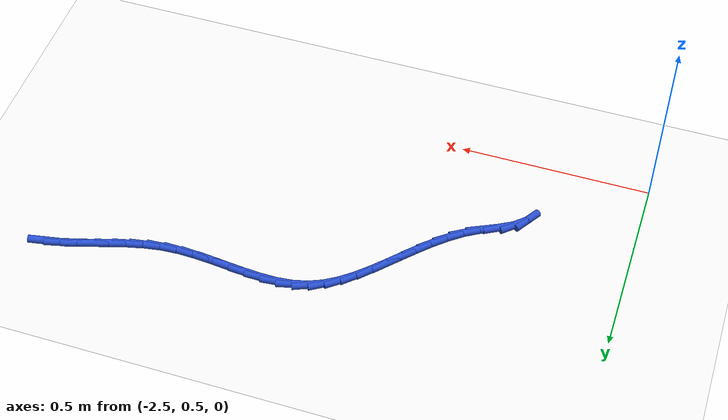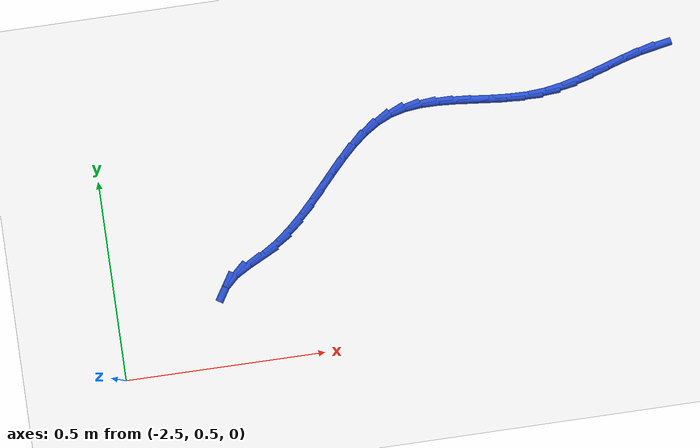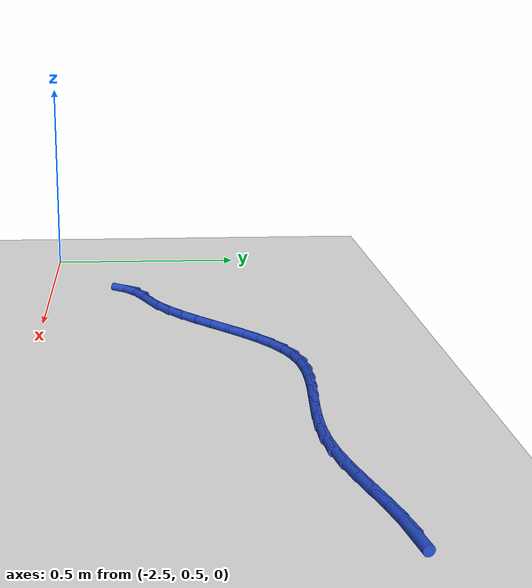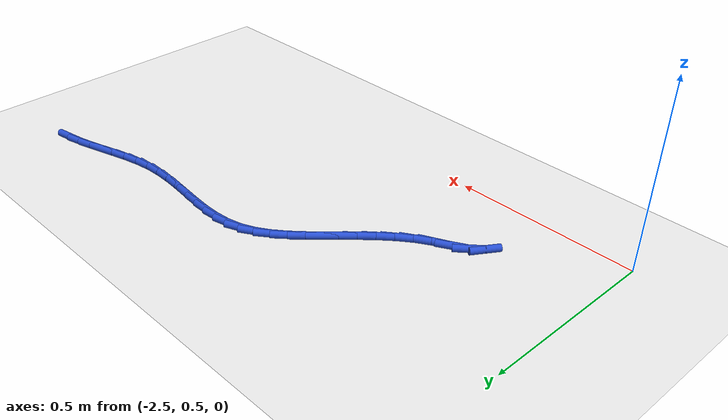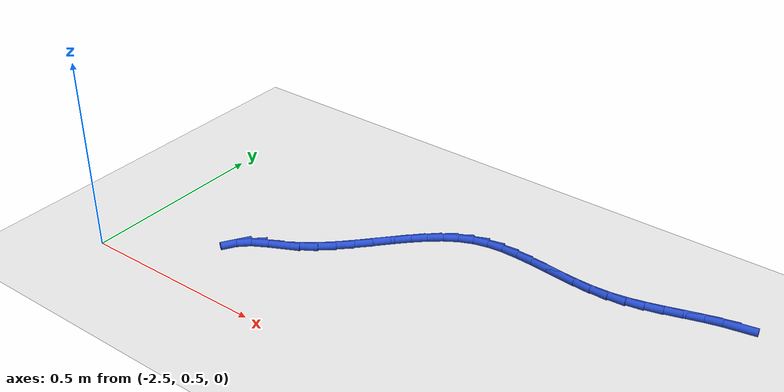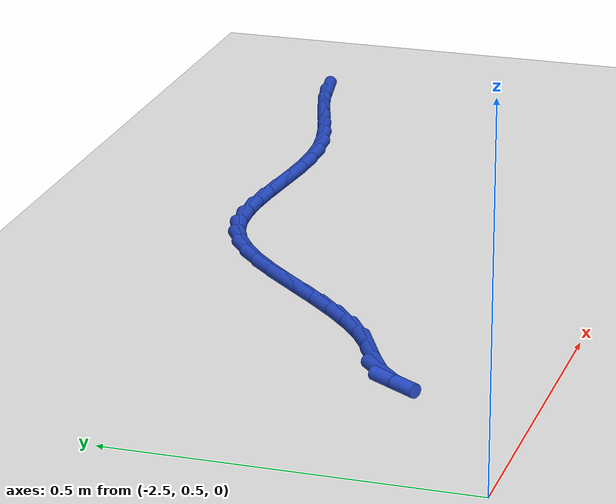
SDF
<sdf version="1.6">
 <world name="default">
  <model name="ground_plane">
   <static>1</static>
   <link name="link">
    <collision name="collision">
     <geometry><plane><normal>0 0 1</normal><size>100 100</size></plane></geometry>
     <surface><friction><ode><mu>100</mu><mu2>50</mu2></ode></friction></surface>
    </collision>
    <visual name="visual">
     <cast_shadows>0</cast_shadows>
     <geometry><plane><normal>0 0 1</normal><size>100 100</size></plane></geometry>
     <material>
      <script><uri>file://media/materials/scripts/gazebo.material</uri><name>Gazebo/WhiteGlow</name></script>
     </material>
    </visual>
   </link>
  </model>
  <model name="line">
   <link name="link_42">
    <pose>-1.074573151165025 1.1385434567204546 0.01 0 1.57 0.18410774424874166</pose>
    <collision name="collision">
     <geometry><cylinder><radius>0.01</radius><length>0.08</length></cylinder></geometry>
    </collision>
    <visual name="visual">
     <material>
      <script><name>Gazebo/Blue</name><uri>file://media/materials/scripts/gazebo.material</uri></script>
     </material>
     <geometry><cylinder><radius>0.01</radius><length>0.08</length></cylinder></geometry>
    </visual>
   </link>
   <link name="link_43">
    <pose>-1.1153569736976783 1.1309488363957154 0.01 0 1.57 0.256298369105912</pose>
    <collision name="collision">
     <geometry><cylinder><radius>0.01</radius><length>0.08</length></cylinder></geometry>
    </collision>
    <visual name="visual">
     <material>
      <script><name>Gazebo/Blue</name><uri>file://media/materials/scripts/gazebo.material</uri></script>
     </material>
     <geometry><cylinder><radius>0.01</radius><length>0.08</length></cylinder></geometry>
    </visual>
   </link>
   <link name="link_44">
    <pose>-1.156262246878765 1.1202291253668561 0.01 0 1.57 0.2961466587748973</pose>
    <collision name="collision">
     <geometry><cylinder><radius>0.01</radius><length>0.08</length></cylinder></geometry>
    </collision>
    <visual name="visual">
     <material>
      <script><name>Gazebo/Blue</name><uri>file://media/materials/scripts/gazebo.material</uri></script>
     </material>
     <geometry><cylinder><radius>0.01</radius><length>0.08</length></cylinder></geometry>
    </visual>
   </link>
   <link name="link_45">
    <pose>-1.1974212930094799 1.1076707104634085 0.01 0 1.57 0.3056865476496799</pose>
    <collision name="collision">
     <geometry><cylinder><radius>0.01</radius><length>0.08</length></cylinder></geometry>
    </collision>
    <visual name="visual">
     <material>
      <script><name>Gazebo/Blue</name><uri>file://media/materials/scripts/gazebo.material</uri></script>
     </material>
     <geometry><cylinder><radius>0.01</radius><length>0.08</length></cylinder></geometry>
    </visual>
   </link>
   <link name="link_46">
    <pose>-1.2389664343910192 1.0945599785149045 0.01 0 1.57 0.2861614366990151</pose>
    <collision name="collision">
     <geometry><cylinder><radius>0.01</radius><length>0.08</length></cylinder></geometry>
    </collision>
    <visual name="visual">
     <material>
      <script><name>Gazebo/Blue</name><uri>file://media/materials/scripts/gazebo.material</uri></script>
     </material>
     <geometry><cylinder><radius>0.01</radius><length>0.08</length></cylinder></geometry>
    </visual>
   </link>
   <link name="link_47">
    <pose>-1.2810299933245772 1.0821833163508756 0.01 0 1.57 0.23786299277136586</pose>
    <collision name="collision">
     <geometry><cylinder><radius>0.01</radius><length>0.08</length></cylinder></geometry>
    </collision>
    <visual name="visual">
     <material>
      <script><name>Gazebo/Blue</name><uri>file://media/materials/scripts/gazebo.material</uri></script>
     </material>
     <geometry><cylinder><radius>0.01</radius><length>0.08</length></cylinder></geometry>
    </visual>
   </link>
   <link name="link_48">
    <pose>-1.32374429211135 1.0718271108008544 0.01 0 1.57 0.16066722216159088</pose>
    <collision name="collision">
     <geometry><cylinder><radius>0.01</radius><length>0.08</length></cylinder></geometry>
    </collision>
    <visual name="visual">
     <material>
      <script><name>Gazebo/Blue</name><uri>file://media/materials/scripts/gazebo.material</uri></script>
     </material>
     <geometry><cylinder><radius>0.01</radius><length>0.08</length></cylinder></geometry>
    </visual>
   </link>
   <link name="link_49">
    <pose>-1.367241653052532 1.0647777486943713 0.01 0 1.57 0.06099022538829343</pose>
    <collision name="collision">
     <geometry><cylinder><radius>0.01</radius><length>0.08</length></cylinder></geometry>
    </collision>
    <visual name="visual">
     <material>
      <script><name>Gazebo/Blue</name><uri>file://media/materials/scripts/gazebo.material</uri></script>
     </material>
     <geometry><cylinder><radius>0.01</radius><length>0.08</length></cylinder></geometry>
    </visual>
   </link>
   <link name="link_50">
    <pose>-1.4116028810396957 1.0620687876296848 0.01 0 1.57 -0.02235480627939234</pose>
    <collision name="collision">
     <geometry><cylinder><radius>0.01</radius><length>0.08</length></cylinder></geometry>
    </collision>
    <visual name="visual">
     <material>
      <script><name>Gazebo/Blue</name><uri>file://media/materials/scripts/gazebo.material</uri></script>
     </material>
     <geometry><cylinder><radius>0.01</radius><length>0.08</length></cylinder></geometry>
    </visual>
   </link>
   <link name="link_51">
    <pose>-1.4565706178410716 1.0630742001610183 0.01 0 1.57 -0.07565118614138357</pose>
    <collision name="collision">
     <geometry><cylinder><radius>0.01</radius><length>0.08</length></cylinder></geometry>
    </collision>
    <visual name="visual">
     <material>
      <script><name>Gazebo/Blue</name><uri>file://media/materials/scripts/gazebo.material</uri></script>
     </material>
     <geometry><cylinder><radius>0.01</radius><length>0.08</length></cylinder></geometry>
    </visual>
   </link>
   <link name="link_52">
    <pose>-1.5017511336101488 1.066498695174736 0.01 0 1.57 -0.10069201604670874</pose>
    <collision name="collision">
     <geometry><cylinder><radius>0.01</radius><length>0.08</length></cylinder></geometry>
    </collision>
    <visual name="visual">
     <material>
      <script><name>Gazebo/Blue</name><uri>file://media/materials/scripts/gazebo.material</uri></script>
     </material>
     <geometry><cylinder><radius>0.01</radius><length>0.08</length></cylinder></geometry>
    </visual>
   </link>
   <link name="link_53">
    <pose>-1.5467503211675309 1.071045129740832 0.01 0 1.57 -0.09808277241048377</pose>
    <collision name="collision">
     <geometry><cylinder><radius>0.01</radius><length>0.08</length></cylinder></geometry>
    </collision>
    <visual name="visual">
     <material>
      <script><name>Gazebo/Blue</name><uri>file://media/materials/scripts/gazebo.material</uri></script>
     </material>
     <geometry><cylinder><radius>0.01</radius><length>0.08</length></cylinder></geometry>
    </visual>
   </link>
   <link name="link_54">
    <pose>-1.5911740733338242 1.0754163609293022 0.01 0 1.57 -0.06661255522651933</pose>
    <collision name="collision">
     <geometry><cylinder><radius>0.01</radius><length>0.08</length></cylinder></geometry>
    </collision>
    <visual name="visual">
     <material>
      <script><name>Gazebo/Blue</name><uri>file://media/materials/scripts/gazebo.material</uri></script>
     </material>
     <geometry><cylinder><radius>0.01</radius><length>0.08</length></cylinder></geometry>
    </visual>
   </link>
   <link name="link_55">
    <pose>-1.6346282829296348 1.0783152458101406 0.01 0 1.57 -0.0030742103703682885</pose>
    <collision name="collision">
     <geometry><cylinder><radius>0.01</radius><length>0.08</length></cylinder></geometry>
    </collision>
    <visual name="visual">
     <material>
      <script><name>Gazebo/Blue</name><uri>file://media/materials/scripts/gazebo.material</uri></script>
     </material>
     <geometry><cylinder><radius>0.01</radius><length>0.08</length></cylinder></geometry>
    </visual>
   </link>
   <link name="link_56">
    <pose>-1.6767188427755668 1.0784446414533433 0.01 0 1.57 0.09731039615867956</pose>
    <collision name="collision">
     <geometry><cylinder><radius>0.01</radius><length>0.08</length></cylinder></geometry>
    </collision>
    <visual name="visual">
     <material>
      <script><name>Gazebo/Blue</name><uri>file://media/materials/scripts/gazebo.material</uri></script>
     </material>
     <geometry><cylinder><radius>0.01</radius><length>0.08</length></cylinder></geometry>
    </visual>
   </link>
   <link name="link_57">
    <pose>-1.7170516456922265 1.074507404928904 0.01 0 1.57 0.23894945844731774</pose>
    <collision name="collision">
     <geometry><cylinder><radius>0.01</radius><length>0.08</length></cylinder></geometry>
    </collision>
    <visual name="visual">
     <material>
      <script><name>Gazebo/Blue</name><uri>file://media/materials/scripts/gazebo.material</uri></script>
     </material>
     <geometry><cylinder><radius>0.01</radius><length>0.08</length></cylinder></geometry>
    </visual>
   </link>
   <link name="link_58">
    <pose>-1.7552325845002201 1.0652063933068188 0.01 0 1.57 0.41126925163174294</pose>
    <collision name="collision">
     <geometry><cylinder><radius>0.01</radius><length>0.08</length></cylinder></geometry>
    </collision>
    <visual name="visual">
     <material>
      <script><name>Gazebo/Blue</name><uri>file://media/materials/scripts/gazebo.material</uri></script>
     </material>
     <geometry><cylinder><radius>0.01</radius><length>0.08</length></cylinder></geometry>
    </visual>
   </link>
   <link name="link_59">
    <pose>-1.7910038839021345 1.0496050609742291 0.01 0 1.57 0.5626519368448563</pose>
    <collision name="collision">
     <geometry><cylinder><radius>0.01</radius><length>0.08</length></cylinder></geometry>
    </collision>
    <visual name="visual">
     <material>
      <script><name>Gazebo/Blue</name><uri>file://media/materials/scripts/gazebo.material</uri></script>
     </material>
     <geometry><cylinder><radius>0.01</radius><length>0.08</length></cylinder></geometry>
    </visual>
   </link>
   <link name="link_60">
    <pose>-1.824706500268398 1.0283505053368704 0.01 0 1.57 0.6769133172809165</pose>
    <collision name="collision">
     <geometry><cylinder><radius>0.01</radius><length>0.08</length></cylinder></geometry>
    </collision>
    <visual name="visual">
     <material>
      <script><name>Gazebo/Blue</name><uri>file://media/materials/scripts/gazebo.material</uri></script>
     </material>
     <geometry><cylinder><radius>0.01</radius><length>0.08</length></cylinder></geometry>
    </visual>
   </link>
   <link name="link_61">
    <pose>-1.8568457059868546 1.0025244390510215 0.01 0 1.57 0.7561795019125378</pose>
    <collision name="collision">
     <geometry><cylinder><radius>0.01</radius><length>0.08</length></cylinder></geometry>
    </collision>
    <visual name="visual">
     <material>
      <script><name>Gazebo/Blue</name><uri>file://media/materials/scripts/gazebo.material</uri></script>
     </material>
     <geometry><cylinder><radius>0.01</radius><length>0.08</length></cylinder></geometry>
    </visual>
   </link>
   <link name="link_62">
    <pose>-1.8879267779651037 0.9732085867276938 0.01 0 1.57 0.80460315474322</pose>
    <collision name="collision">
     <geometry><cylinder><radius>0.01</radius><length>0.08</length></cylinder></geometry>
    </collision>
    <visual name="visual">
     <material>
      <script><name>Gazebo/Blue</name><uri>file://media/materials/scripts/gazebo.material</uri></script>
     </material>
     <geometry><cylinder><radius>0.01</radius><length>0.08</length></cylinder></geometry>
    </visual>
   </link>
   <link name="link_63">
    <pose>-1.9184549931107442 0.9414846729778992 0.01 0 1.57 0.8258228394307588</pose>
    <collision name="collision">
     <geometry><cylinder><radius>0.01</radius><length>0.08</length></cylinder></geometry>
    </collision>
    <visual name="visual">
     <material>
      <script><name>Gazebo/Blue</name><uri>file://media/materials/scripts/gazebo.material</uri></script>
     </material>
     <geometry><cylinder><radius>0.01</radius><length>0.08</length></cylinder></geometry>
    </visual>
   </link>
   <link name="link_64">
    <pose>-1.9489356283313743 0.90843442241265 0.01 0 1.57 0.822068831382171</pose>
    <collision name="collision">
     <geometry><cylinder><radius>0.01</radius><length>0.08</length></cylinder></geometry>
    </collision>
    <visual name="visual">
     <material>
      <script><name>Gazebo/Blue</name><uri>file://media/materials/scripts/gazebo.material</uri></script>
     </material>
     <geometry><cylinder><radius>0.01</radius><length>0.08</length></cylinder></geometry>
    </visual>
   </link>
   <link name="link_65">
    <pose>-1.9798739605345936 0.8751395596429579 0.01 0 1.57 0.7940438837642151</pose>
    <collision name="collision">
     <geometry><cylinder><radius>0.01</radius><length>0.08</length></cylinder></geometry>
    </collision>
    <visual name="visual">
     <material>
      <script><name>Gazebo/Blue</name><uri>file://media/materials/scripts/gazebo.material</uri></script>
     </material>
     <geometry><cylinder><radius>0.01</radius><length>0.08</length></cylinder></geometry>
    </visual>
   </link>
   <link name="link_66">
    <pose>-2.0117752666280015 0.8426818092798342 0.01 0 1.57 0.7411349434529477</pose>
    <collision name="collision">
     <geometry><cylinder><radius>0.01</radius><length>0.08</length></cylinder></geometry>
    </collision>
    <visual name="visual">
     <material>
      <script><name>Gazebo/Blue</name><uri>file://media/materials/scripts/gazebo.material</uri></script>
     </material>
     <geometry><cylinder><radius>0.01</radius><length>0.08</length></cylinder></geometry>
    </visual>
   </link>
   <link name="link_67">
    <pose>-2.0451448235191965 0.8121428959342915 0.01 0 1.57 0.6619114624031508</pose>
    <collision name="collision">
     <geometry><cylinder><radius>0.01</radius><length>0.08</length></cylinder></geometry>
    </collision>
    <visual name="visual">
     <material>
      <script><name>Gazebo/Blue</name><uri>file://media/materials/scripts/gazebo.material</uri></script>
     </material>
     <geometry><cylinder><radius>0.01</radius><length>0.08</length></cylinder></geometry>
    </visual>
   </link>
   <link name="link_68">
    <pose>-2.080487908115778 0.7846045442173416 0.01 0 1.57 0.5551197454959811</pose>
    <collision name="collision">
     <geometry><cylinder><radius>0.01</radius><length>0.08</length></cylinder></geometry>
    </collision>
    <visual name="visual">
     <material>
      <script><name>Gazebo/Blue</name><uri>file://media/materials/scripts/gazebo.material</uri></script>
     </material>
     <geometry><cylinder><radius>0.01</radius><length>0.08</length></cylinder></geometry>
    </visual>
   </link>
   <link name="link_69">
    <pose>-2.1183097973253444 0.7611484787399956 0.01 0 1.57 0.45629590736237746</pose>
    <collision name="collision">
     <geometry><cylinder><radius>0.01</radius><length>0.08</length></cylinder></geometry>
    </collision>
    <visual name="visual">
     <material>
      <script><name>Gazebo/Blue</name><uri>file://media/materials/scripts/gazebo.material</uri></script>
     </material>
     <geometry><cylinder><radius>0.01</radius><length>0.08</length></cylinder></geometry>
    </visual>
   </link>
   <link name="link_70">
    <pose>-2.1579637086260437 0.741684599671298 0.01 0 1.57 0.5141733736077727</pose>
    <collision name="collision">
     <geometry><cylinder><radius>0.01</radius><length>0.08</length></cylinder></geometry>
    </collision>
    <visual name="visual">
     <material>
      <script><name>Gazebo/Blue</name><uri>file://media/materials/scripts/gazebo.material</uri></script>
     </material>
     <geometry><cylinder><radius>0.01</radius><length>0.08</length></cylinder></geometry>
    </visual>
   </link>
   <link name="link_71">
    <pose>-2.1940584127165534 0.721296480224273 0.01 0 1.57 0.746256488153996</pose>
    <collision name="collision">
     <geometry><cylinder><radius>0.01</radius><length>0.08</length></cylinder></geometry>
    </collision>
    <visual name="visual">
     <material>
      <script><name>Gazebo/Blue</name><uri>file://media/materials/scripts/gazebo.material</uri></script>
     </material>
     <geometry><cylinder><radius>0.01</radius><length>0.08</length></cylinder></geometry>
    </visual>
   </link>
   <link name="link_72">
    <pose>-2.2218799956095565 0.6955718565646939 0.01 0 1.57 1.0084616936559099</pose>
    <collision name="collision">
     <geometry><cylinder><radius>0.01</radius><length>0.08</length></cylinder></geometry>
    </collision>
    <visual name="visual">
     <material>
      <script><name>Gazebo/Blue</name><uri>file://media/materials/scripts/gazebo.material</uri></script>
     </material>
     <geometry><cylinder><radius>0.01</radius><length>0.08</length></cylinder></geometry>
    </visual>
   </link>
  </model>
 </world>
</sdf>
